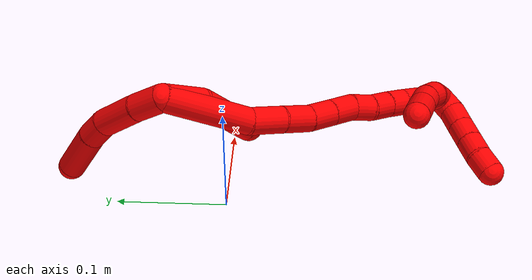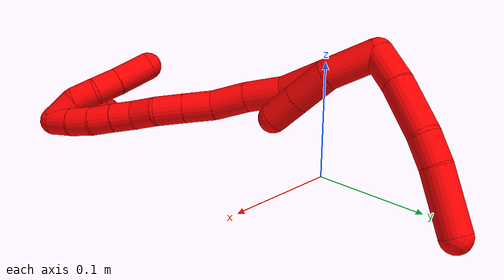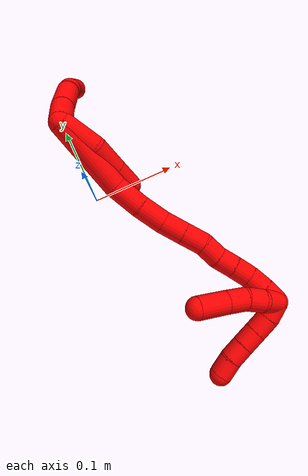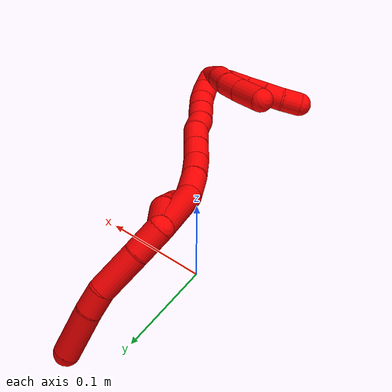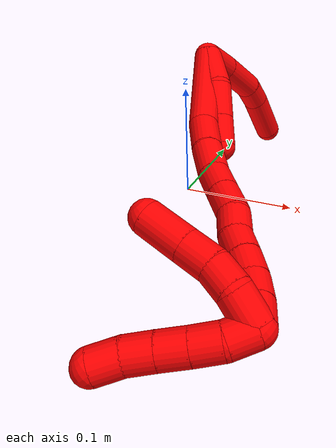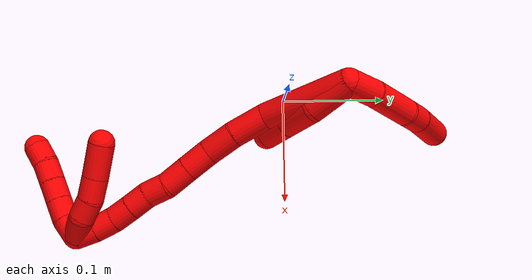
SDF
<sdf version="1.7">
 <world name="default">
  <model name="photoneo_s_sensor">
   <static>1</static>
   <pose>0 0 2 1.57079 1.57079 3.14159</pose>
   <link name="link">
    <inertial><mass>0.1</mass></inertial>
    <sensor name="sensor" type="depth">
     <update_rate>30</update_rate>
     <camera>
      <horizontal_fov>1.22</horizontal_fov>
      <image><width>1920</width><height>1200</height><format>B8G8R8</format></image>
      <clip><near>0.1</near><far>4</far></clip>
      <depth_camera><output>points</output></depth_camera>
     </camera>
     <plugin name="camera_plugin" filename="libgazebo_ros_depth_camera.so">
      <baseline>0.2</baseline>
      <alwaysOn>1</alwaysOn>
      <updateRate>0.0</updateRate>
      <cameraName>camera_ir</cameraName>
      <imageTopicName>/camera/color/image_raw</imageTopicName>
      <cameraInfoTopicName>/camera/color/camera_info</cameraInfoTopicName>
      <depthImageTopicName>/camera/depth/image_raw</depthImageTopicName>
      <depthImageCameraInfoTopicName>/camera/depth/camera_info</depthImageCameraInfoTopicName>
      <pointCloudTopicName>/camera/depth/points</pointCloudTopicName>
      <frameName>fr_optical</frameName>
      <pointCloudCutoff>0.1</pointCloudCutoff>
      <pointCloudCutoffMax>2.0</pointCloudCutoffMax>
      <distortionK1>0</distortionK1>
      <distortionK2>0</distortionK2>
      <distortionK3>0</distortionK3>
      <distortionT1>0</distortionT1>
      <distortionT2>0</distortionT2>
      <CxPrime>0</CxPrime>
      <Cx>0</Cx>
      <Cy>0</Cy>
      <focalLength>0</focalLength>
      <hackBaseline>0</hackBaseline>
     </plugin>
    </sensor>
   </link>
  </model>
  <model name="bin">
   <static>1</static>
   <link name="bottom">
    <collision name="collision-bottom">
     <pose>0 0 -0.01 0 -0 0</pose>
     <geometry><box><size>0.8 0.6 0.02</size></box></geometry>
     <surface>
      <friction><ode><mu>100</mu><mu2>100</mu2></ode></friction>
      <contact><collide_bitmask>65535</collide_bitmask></contact>
     </surface>
    </collision>
   </link>
   <link name="west_wall">
    <collision name="collision-west_wall">
     <pose>-0.41 0 0.1 0 -0 0</pose>
     <geometry><box><size>0.02 0.6 0.2</size></box></geometry>
     <surface>
      <friction><ode><mu>100</mu><mu2>100</mu2></ode></friction>
      <contact><collide_bitmask>65535</collide_bitmask></contact>
     </surface>
    </collision>
   </link>
   <link name="east_wall">
    <collision name="collision-east_wall">
     <pose>0.41 0 0.1 0 -0 0</pose>
     <geometry><box><size>0.02 0.6 0.2</size></box></geometry>
     <surface>
      <friction><ode><mu>100</mu><mu2>100</mu2></ode></friction>
      <contact><collide_bitmask>65535</collide_bitmask></contact>
     </surface>
    </collision>
   </link>
   <link name="south_wall">
    <collision name="collision-south_wall">
     <pose>0 -0.31 0.1 0 -0 0</pose>
     <geometry><box><size>0.8 0.02 0.2</size></box></geometry>
     <surface>
      <friction><ode><mu>100</mu><mu2>100</mu2></ode></friction>
      <contact><collide_bitmask>65535</collide_bitmask></contact>
     </surface>
    </collision>
   </link>
   <link name="north_wall">
    <collision name="collision-north_wall">
     <pose>0 0.31 0.1 0 -0 0</pose>
     <geometry><box><size>0.8 0.02 0.2</size></box></geometry>
     <surface>
      <friction><ode><mu>100</mu><mu2>100</mu2></ode></friction>
      <contact><collide_bitmask>65535</collide_bitmask></contact>
     </surface>
    </collision>
   </link>
  </model>
  <model name="2">
   <static>0</static>
   <link name="2">
    <collision name="collision-cylinder-e_1_2_8">
     <pose>-0.003257 0.01201 -0.00924 -2.22653 -0.211712 0.425075</pose>
     <geometry><cylinder><radius>0.0125</radius><length>0.030999</length></cylinder></geometry>
     <surface>
      <friction><ode><mu>1.16</mu><mu2>1.16</mu2><slip1>0</slip1><slip2>0</slip2></ode></friction>
      <contact><ode><kp>1e+06</kp><kd>1</kd><max_vel>0</max_vel><min_depth>0.001</min_depth></ode></contact>
     </surface>
    </collision>
    <visual name="visual-cylinder-e_1_2_8">
     <pose>-0.003257 0.01201 -0.00924 -2.22653 -0.211712 0.425075</pose>
     <geometry><cylinder><radius>0.0125</radius><length>0.030999</length></cylinder></geometry>
     <material><ambient>1 0 0 1</ambient></material>
    </visual>
    <collision name="collision-cylinder-e_2_8_9">
     <pose>-0.011445 0.039826 -0.033561 -2.33278 -0.222016 0.509552</pose>
     <geometry><cylinder><radius>0.0125</radius><length>0.044791</length></cylinder></geometry>
     <surface>
      <friction><ode><mu>1.16</mu><mu2>1.16</mu2><slip1>0</slip1><slip2>0</slip2></ode></friction>
      <contact><ode><kp>1e+06</kp><kd>1</kd><max_vel>0</max_vel><min_depth>0.001</min_depth></ode></contact>
     </surface>
    </collision>
    <visual name="visual-cylinder-e_2_8_9">
     <pose>-0.011445 0.039826 -0.033561 -2.33278 -0.222016 0.509552</pose>
     <geometry><cylinder><radius>0.0125</radius><length>0.044791</length></cylinder></geometry>
     <material><ambient>1 0 0 1</ambient></material>
    </visual>
    <collision name="collision-cylinder-e_3_9_10">
     <pose>-0.021325 0.062358 -0.057095 -2.4694 -0.429495 1.11624</pose>
     <geometry><cylinder><radius>0.0125</radius><length>0.023765</length></cylinder></geometry>
     <surface>
      <friction><ode><mu>1.16</mu><mu2>1.16</mu2><slip1>0</slip1><slip2>0</slip2></ode></friction>
      <contact><ode><kp>1e+06</kp><kd>1</kd><max_vel>0</max_vel><min_depth>0.001</min_depth></ode></contact>
     </surface>
    </collision>
    <visual name="visual-cylinder-e_3_9_10">
     <pose>-0.021325 0.062358 -0.057095 -2.4694 -0.429495 1.11624</pose>
     <geometry><cylinder><radius>0.0125</radius><length>0.023765</length></cylinder></geometry>
     <material><ambient>1 0 0 1</ambient></material>
    </visual>
    <collision name="collision-cylinder-e_4_10_6">
     <pose>-0.038096 0.08059 -0.084628 -2.59898 -0.487877 1.45985</pose>
     <geometry><cylinder><radius>0.0125</radius><length>0.050445</length></cylinder></geometry>
     <surface>
      <friction><ode><mu>1.16</mu><mu2>1.16</mu2><slip1>0</slip1><slip2>0</slip2></ode></friction>
      <contact><ode><kp>1e+06</kp><kd>1</kd><max_vel>0</max_vel><min_depth>0.001</min_depth></ode></contact>
     </surface>
    </collision>
    <visual name="visual-cylinder-e_4_10_6">
     <pose>-0.038096 0.08059 -0.084628 -2.59898 -0.487877 1.45985</pose>
     <geometry><cylinder><radius>0.0125</radius><length>0.050445</length></cylinder></geometry>
     <material><ambient>1 0 0 1</ambient></material>
    </visual>
    <collision name="collision-cylinder-e_1_2_11">
     <pose>0.002186 -0.015561 -0.013241 2.27579 0.106566 0.229797</pose>
     <geometry><cylinder><radius>0.0125</radius><length>0.041097</length></cylinder></geometry>
     <surface>
      <friction><ode><mu>1.16</mu><mu2>1.16</mu2><slip1>0</slip1><slip2>0</slip2></ode></friction>
      <contact><ode><kp>1e+06</kp><kd>1</kd><max_vel>0</max_vel><min_depth>0.001</min_depth></ode></contact>
     </surface>
    </collision>
    <visual name="visual-cylinder-e_1_2_11">
     <pose>0.002186 -0.015561 -0.013241 2.27579 0.106566 0.229797</pose>
     <geometry><cylinder><radius>0.0125</radius><length>0.041097</length></cylinder></geometry>
     <material><ambient>1 0 0 1</ambient></material>
    </visual>
    <collision name="collision-cylinder-e_2_11_12">
     <pose>0.000967 -0.042369 -0.037771 2.35815 -0.210481 -0.50071</pose>
     <geometry><cylinder><radius>0.0125</radius><length>0.032591</length></cylinder></geometry>
     <surface>
      <friction><ode><mu>1.16</mu><mu2>1.16</mu2><slip1>0</slip1><slip2>0</slip2></ode></friction>
      <contact><ode><kp>1e+06</kp><kd>1</kd><max_vel>0</max_vel><min_depth>0.001</min_depth></ode></contact>
     </surface>
    </collision>
    <visual name="visual-cylinder-e_2_11_12">
     <pose>0.000967 -0.042369 -0.037771 2.35815 -0.210481 -0.50071</pose>
     <geometry><cylinder><radius>0.0125</radius><length>0.032591</length></cylinder></geometry>
     <material><ambient>1 0 0 1</ambient></material>
    </visual>
    <collision name="collision-cylinder-e_3_12_5">
     <pose>-0.005131 -0.06266 -0.058227 2.36281 -0.206151 -0.493886</pose>
     <geometry><cylinder><radius>0.0125</radius><length>0.026312</length></cylinder></geometry>
     <surface>
      <friction><ode><mu>1.16</mu><mu2>1.16</mu2><slip1>0</slip1><slip2>0</slip2></ode></friction>
      <contact><ode><kp>1e+06</kp><kd>1</kd><max_vel>0</max_vel><min_depth>0.001</min_depth></ode></contact>
     </surface>
    </collision>
    <visual name="visual-cylinder-e_3_12_5">
     <pose>-0.005131 -0.06266 -0.058227 2.36281 -0.206151 -0.493886</pose>
     <geometry><cylinder><radius>0.0125</radius><length>0.026312</length></cylinder></geometry>
     <material><ambient>1 0 0 1</ambient></material>
    </visual>
    <collision name="collision-cylinder-e_1_2_13">
     <pose>-0.0033 -0.036306 -0.021647 2.10845 -0.077916 -0.137027</pose>
     <geometry><cylinder><radius>0.0125</radius><length>0.084797</length></cylinder></geometry>
     <surface>
      <friction><ode><mu>1.16</mu><mu2>1.16</mu2><slip1>0</slip1><slip2>0</slip2></ode></friction>
      <contact><ode><kp>1e+06</kp><kd>1</kd><max_vel>0</max_vel><min_depth>0.001</min_depth></ode></contact>
     </surface>
    </collision>
    <visual name="visual-cylinder-e_1_2_13">
     <pose>-0.0033 -0.036306 -0.021647 2.10845 -0.077916 -0.137027</pose>
     <geometry><cylinder><radius>0.0125</radius><length>0.084797</length></cylinder></geometry>
     <material><ambient>1 0 0 1</ambient></material>
    </visual>
    <collision name="collision-cylinder-e_2_13_14">
     <pose>-0.003336 -0.087084 -0.050824 2.05054 0.197484 0.32357</pose>
     <geometry><cylinder><radius>0.0125</radius><length>0.033272</length></cylinder></geometry>
     <surface>
      <friction><ode><mu>1.16</mu><mu2>1.16</mu2><slip1>0</slip1><slip2>0</slip2></ode></friction>
      <contact><ode><kp>1e+06</kp><kd>1</kd><max_vel>0</max_vel><min_depth>0.001</min_depth></ode></contact>
     </surface>
    </collision>
    <visual name="visual-cylinder-e_2_13_14">
     <pose>-0.003336 -0.087084 -0.050824 2.05054 0.197484 0.32357</pose>
     <geometry><cylinder><radius>0.0125</radius><length>0.033272</length></cylinder></geometry>
     <material><ambient>1 0 0 1</ambient></material>
    </visual>
    <collision name="collision-cylinder-e_3_14_15">
     <pose>0.002928 -0.113505 -0.066519 2.17025 0.204382 0.383778</pose>
     <geometry><cylinder><radius>0.0125</radius><length>0.029562</length></cylinder></geometry>
     <surface>
      <friction><ode><mu>1.16</mu><mu2>1.16</mu2><slip1>0</slip1><slip2>0</slip2></ode></friction>
      <contact><ode><kp>1e+06</kp><kd>1</kd><max_vel>0</max_vel><min_depth>0.001</min_depth></ode></contact>
     </surface>
    </collision>
    <visual name="visual-cylinder-e_3_14_15">
     <pose>0.002928 -0.113505 -0.066519 2.17025 0.204382 0.383778</pose>
     <geometry><cylinder><radius>0.0125</radius><length>0.029562</length></cylinder></geometry>
     <material><ambient>1 0 0 1</ambient></material>
    </visual>
    <collision name="collision-cylinder-e_4_15_16">
     <pose>0.010583 -0.135486 -0.08087 2.12328 0.376198 0.657224</pose>
     <geometry><cylinder><radius>0.0125</radius><length>0.025343</length></cylinder></geometry>
     <surface>
      <friction><ode><mu>1.16</mu><mu2>1.16</mu2><slip1>0</slip1><slip2>0</slip2></ode></friction>
      <contact><ode><kp>1e+06</kp><kd>1</kd><max_vel>0</max_vel><min_depth>0.001</min_depth></ode></contact>
     </surface>
    </collision>
    <visual name="visual-cylinder-e_4_15_16">
     <pose>0.010583 -0.135486 -0.08087 2.12328 0.376198 0.657224</pose>
     <geometry><cylinder><radius>0.0125</radius><length>0.025343</length></cylinder></geometry>
     <material><ambient>1 0 0 1</ambient></material>
    </visual>
    <collision name="collision-cylinder-e_5_16_17">
     <pose>0.019898 -0.155393 -0.0933 2.13476 0.379497 0.67108</pose>
     <geometry><cylinder><radius>0.0125</radius><length>0.025158</length></cylinder></geometry>
     <surface>
      <friction><ode><mu>1.16</mu><mu2>1.16</mu2><slip1>0</slip1><slip2>0</slip2></ode></friction>
      <contact><ode><kp>1e+06</kp><kd>1</kd><max_vel>0</max_vel><min_depth>0.001</min_depth></ode></contact>
     </surface>
    </collision>
    <visual name="visual-cylinder-e_5_16_17">
     <pose>0.019898 -0.155393 -0.0933 2.13476 0.379497 0.67108</pose>
     <geometry><cylinder><radius>0.0125</radius><length>0.025158</length></cylinder></geometry>
     <material><ambient>1 0 0 1</ambient></material>
    </visual>
    <collision name="collision-cylinder-e_6_17_18">
     <pose>0.025875 -0.174659 -0.104078 2.02039 0.125609 0.19968</pose>
     <geometry><cylinder><radius>0.0125</radius><length>0.02102</length></cylinder></geometry>
     <surface>
      <friction><ode><mu>1.16</mu><mu2>1.16</mu2><slip1>0</slip1><slip2>0</slip2></ode></friction>
      <contact><ode><kp>1e+06</kp><kd>1</kd><max_vel>0</max_vel><min_depth>0.001</min_depth></ode></contact>
     </surface>
    </collision>
    <visual name="visual-cylinder-e_6_17_18">
     <pose>0.025875 -0.174659 -0.104078 2.02039 0.125609 0.19968</pose>
     <geometry><cylinder><radius>0.0125</radius><length>0.02102</length></cylinder></geometry>
     <material><ambient>1 0 0 1</ambient></material>
    </visual>
    <collision name="collision-cylinder-e_7_18_19">
     <pose>0.030467 -0.192096 -0.113633 2.12889 0.332482 0.587597</pose>
     <geometry><cylinder><radius>0.0125</radius><length>0.02007</length></cylinder></geometry>
     <surface>
      <friction><ode><mu>1.16</mu><mu2>1.16</mu2><slip1>0</slip1><slip2>0</slip2></ode></friction>
      <contact><ode><kp>1e+06</kp><kd>1</kd><max_vel>0</max_vel><min_depth>0.001</min_depth></ode></contact>
     </surface>
    </collision>
    <visual name="visual-cylinder-e_7_18_19">
     <pose>0.030467 -0.192096 -0.113633 2.12889 0.332482 0.587597</pose>
     <geometry><cylinder><radius>0.0125</radius><length>0.02007</length></cylinder></geometry>
     <material><ambient>1 0 0 1</ambient></material>
    </visual>
    <collision name="collision-cylinder-e_8_19_20">
     <pose>0.036647 -0.208353 -0.123737 2.12493 0.292153 0.516328</pose>
     <geometry><cylinder><radius>0.0125</radius><length>0.020167</length></cylinder></geometry>
     <surface>
      <friction><ode><mu>1.16</mu><mu2>1.16</mu2><slip1>0</slip1><slip2>0</slip2></ode></friction>
      <contact><ode><kp>1e+06</kp><kd>1</kd><max_vel>0</max_vel><min_depth>0.001</min_depth></ode></contact>
     </surface>
    </collision>
    <visual name="visual-cylinder-e_8_19_20">
     <pose>0.036647 -0.208353 -0.123737 2.12493 0.292153 0.516328</pose>
     <geometry><cylinder><radius>0.0125</radius><length>0.020167</length></cylinder></geometry>
     <material><ambient>1 0 0 1</ambient></material>
    </visual>
    <collision name="collision-cylinder-e_9_20_21">
     <pose>0.042143 -0.225744 -0.132681 1.96909 0.254648 0.380841</pose>
     <geometry><cylinder><radius>0.0125</radius><length>0.020581</length></cylinder></geometry>
     <surface>
      <friction><ode><mu>1.16</mu><mu2>1.16</mu2><slip1>0</slip1><slip2>0</slip2></ode></friction>
      <contact><ode><kp>1e+06</kp><kd>1</kd><max_vel>0</max_vel><min_depth>0.001</min_depth></ode></contact>
     </surface>
    </collision>
    <visual name="visual-cylinder-e_9_20_21">
     <pose>0.042143 -0.225744 -0.132681 1.96909 0.254648 0.380841</pose>
     <geometry><cylinder><radius>0.0125</radius><length>0.020581</length></cylinder></geometry>
     <material><ambient>1 0 0 1</ambient></material>
    </visual>
    <collision name="collision-cylinder-e_10_21_1">
     <pose>0.046886 -0.244364 -0.139099 1.83514 0.216443 0.282041</pose>
     <geometry><cylinder><radius>0.0125</radius><length>0.020029</length></cylinder></geometry>
     <surface>
      <friction><ode><mu>1.16</mu><mu2>1.16</mu2><slip1>0</slip1><slip2>0</slip2></ode></friction>
      <contact><ode><kp>1e+06</kp><kd>1</kd><max_vel>0</max_vel><min_depth>0.001</min_depth></ode></contact>
     </surface>
    </collision>
    <visual name="visual-cylinder-e_10_21_1">
     <pose>0.046886 -0.244364 -0.139099 1.83514 0.216443 0.282041</pose>
     <geometry><cylinder><radius>0.0125</radius><length>0.020029</length></cylinder></geometry>
     <material><ambient>1 0 0 1</ambient></material>
    </visual>
    <collision name="collision-cylinder-e_1_1_22">
     <pose>0.047991 -0.249418 -0.129958 -0.358835 -0.083547 0.015161</pose>
     <geometry><cylinder><radius>0.0125</radius><length>0.025071</length></cylinder></geometry>
     <surface>
      <friction><ode><mu>1.16</mu><mu2>1.16</mu2><slip1>0</slip1><slip2>0</slip2></ode></friction>
      <contact><ode><kp>1e+06</kp><kd>1</kd><max_vel>0</max_vel><min_depth>0.001</min_depth></ode></contact>
     </surface>
    </collision>
    <visual name="visual-cylinder-e_1_1_22">
     <pose>0.047991 -0.249418 -0.129958 -0.358835 -0.083547 0.015161</pose>
     <geometry><cylinder><radius>0.0125</radius><length>0.025071</length></cylinder></geometry>
     <material><ambient>1 0 0 1</ambient></material>
    </visual>
    <collision name="collision-cylinder-e_2_22_23">
     <pose>0.043193 -0.240277 -0.110196 -0.53267 -0.381092 0.105148</pose>
     <geometry><cylinder><radius>0.0125</radius><length>0.020173</length></cylinder></geometry>
     <surface>
      <friction><ode><mu>1.16</mu><mu2>1.16</mu2><slip1>0</slip1><slip2>0</slip2></ode></friction>
      <contact><ode><kp>1e+06</kp><kd>1</kd><max_vel>0</max_vel><min_depth>0.001</min_depth></ode></contact>
     </surface>
    </collision>
    <visual name="visual-cylinder-e_2_22_23">
     <pose>0.043193 -0.240277 -0.110196 -0.53267 -0.381092 0.105148</pose>
     <geometry><cylinder><radius>0.0125</radius><length>0.020173</length></cylinder></geometry>
     <material><ambient>1 0 0 1</ambient></material>
    </visual>
    <collision name="collision-cylinder-e_3_23_24">
     <pose>0.03376 -0.232633 -0.093025 -0.307204 -0.53651 0.085064</pose>
     <geometry><cylinder><radius>0.0125</radius><length>0.022229</length></cylinder></geometry>
     <surface>
      <friction><ode><mu>1.16</mu><mu2>1.16</mu2><slip1>0</slip1><slip2>0</slip2></ode></friction>
      <contact><ode><kp>1e+06</kp><kd>1</kd><max_vel>0</max_vel><min_depth>0.001</min_depth></ode></contact>
     </surface>
    </collision>
    <visual name="visual-cylinder-e_3_23_24">
     <pose>0.03376 -0.232633 -0.093025 -0.307204 -0.53651 0.085064</pose>
     <geometry><cylinder><radius>0.0125</radius><length>0.022229</length></cylinder></geometry>
     <material><ambient>1 0 0 1</ambient></material>
    </visual>
    <collision name="collision-cylinder-e_4_24_4">
     <pose>0.02024 -0.225969 -0.070179 -0.268142 -0.502949 0.069277</pose>
     <geometry><cylinder><radius>0.0125</radius><length>0.032527</length></cylinder></geometry>
     <surface>
      <friction><ode><mu>1.16</mu><mu2>1.16</mu2><slip1>0</slip1><slip2>0</slip2></ode></friction>
      <contact><ode><kp>1e+06</kp><kd>1</kd><max_vel>0</max_vel><min_depth>0.001</min_depth></ode></contact>
     </surface>
    </collision>
    <visual name="visual-cylinder-e_4_24_4">
     <pose>0.02024 -0.225969 -0.070179 -0.268142 -0.502949 0.069277</pose>
     <geometry><cylinder><radius>0.0125</radius><length>0.032527</length></cylinder></geometry>
     <material><ambient>1 0 0 1</ambient></material>
    </visual>
    <collision name="collision-cylinder-e_1_1_25">
     <pose>0.041807 -0.259654 -0.137977 1.00957 -0.808149 -0.464023</pose>
     <geometry><cylinder><radius>0.0125</radius><length>0.02</length></cylinder></geometry>
     <surface>
      <friction><ode><mu>1.16</mu><mu2>1.16</mu2><slip1>0</slip1><slip2>0</slip2></ode></friction>
      <contact><ode><kp>1e+06</kp><kd>1</kd><max_vel>0</max_vel><min_depth>0.001</min_depth></ode></contact>
     </surface>
    </collision>
    <visual name="visual-cylinder-e_1_1_25">
     <pose>0.041807 -0.259654 -0.137977 1.00957 -0.808149 -0.464023</pose>
     <geometry><cylinder><radius>0.0125</radius><length>0.02</length></cylinder></geometry>
     <material><ambient>1 0 0 1</ambient></material>
    </visual>
    <collision name="collision-cylinder-e_2_25_26">
     <pose>0.026607 -0.26925 -0.129563 0.669219 -0.922288 -0.342133</pose>
     <geometry><cylinder><radius>0.0125</radius><length>0.02</length></cylinder></geometry>
     <surface>
      <friction><ode><mu>1.16</mu><mu2>1.16</mu2><slip1>0</slip1><slip2>0</slip2></ode></friction>
      <contact><ode><kp>1e+06</kp><kd>1</kd><max_vel>0</max_vel><min_depth>0.001</min_depth></ode></contact>
     </surface>
    </collision>
    <visual name="visual-cylinder-e_2_25_26">
     <pose>0.026607 -0.26925 -0.129563 0.669219 -0.922288 -0.342133</pose>
     <geometry><cylinder><radius>0.0125</radius><length>0.02</length></cylinder></geometry>
     <material><ambient>1 0 0 1</ambient></material>
    </visual>
    <collision name="collision-cylinder-e_3_26_27">
     <pose>0.010821 -0.276662 -0.119778 0.62796 -0.89713 -0.31006</pose>
     <geometry><cylinder><radius>0.0125</radius><length>0.02</length></cylinder></geometry>
     <surface>
      <friction><ode><mu>1.16</mu><mu2>1.16</mu2><slip1>0</slip1><slip2>0</slip2></ode></friction>
      <contact><ode><kp>1e+06</kp><kd>1</kd><max_vel>0</max_vel><min_depth>0.001</min_depth></ode></contact>
     </surface>
    </collision>
    <visual name="visual-cylinder-e_3_26_27">
     <pose>0.010821 -0.276662 -0.119778 0.62796 -0.89713 -0.31006</pose>
     <geometry><cylinder><radius>0.0125</radius><length>0.02</length></cylinder></geometry>
     <material><ambient>1 0 0 1</ambient></material>
    </visual>
    <collision name="collision-cylinder-e_4_27_28">
     <pose>-0.004837 -0.284111 -0.109813 0.655916 -0.901534 -0.326428</pose>
     <geometry><cylinder><radius>0.0125</radius><length>0.02</length></cylinder></geometry>
     <surface>
      <friction><ode><mu>1.16</mu><mu2>1.16</mu2><slip1>0</slip1><slip2>0</slip2></ode></friction>
      <contact><ode><kp>1e+06</kp><kd>1</kd><max_vel>0</max_vel><min_depth>0.001</min_depth></ode></contact>
     </surface>
    </collision>
    <visual name="visual-cylinder-e_4_27_28">
     <pose>-0.004837 -0.284111 -0.109813 0.655916 -0.901534 -0.326428</pose>
     <geometry><cylinder><radius>0.0125</radius><length>0.02</length></cylinder></geometry>
     <material><ambient>1 0 0 1</ambient></material>
    </visual>
    <collision name="collision-cylinder-e_5_28_3">
     <pose>-0.020371 -0.293003 -0.101055 0.925975 -0.877417 -0.460136</pose>
     <geometry><cylinder><radius>0.0125</radius><length>0.02</length></cylinder></geometry>
     <surface>
      <friction><ode><mu>1.16</mu><mu2>1.16</mu2><slip1>0</slip1><slip2>0</slip2></ode></friction>
      <contact><ode><kp>1e+06</kp><kd>1</kd><max_vel>0</max_vel><min_depth>0.001</min_depth></ode></contact>
     </surface>
    </collision>
    <visual name="visual-cylinder-e_5_28_3">
     <pose>-0.020371 -0.293003 -0.101055 0.925975 -0.877417 -0.460136</pose>
     <geometry><cylinder><radius>0.0125</radius><length>0.02</length></cylinder></geometry>
     <material><ambient>1 0 0 1</ambient></material>
    </visual>
    <collision name="collision-sphere-3">
     <pose>-0.028062 -0.298111 -0.097213 0 -0 0</pose>
     <geometry><sphere><radius>0.0125</radius></sphere></geometry>
     <surface>
      <friction><ode><mu>1.16</mu><mu2>1.16</mu2><slip1>0</slip1><slip2>0</slip2></ode></friction>
      <contact><ode><kp>1e+06</kp><kd>1</kd><max_vel>0</max_vel><min_depth>0.001</min_depth></ode></contact>
     </surface>
    </collision>
    <visual name="visual-sphere-3">
     <pose>-0.028062 -0.298111 -0.097213 0 -0 0</pose>
     <geometry><sphere><radius>0.0125</radius></sphere></geometry>
     <material><ambient>1 0 0 1</ambient></material>
    </visual>
    <collision name="collision-sphere-28">
     <pose>-0.01268 -0.287895 -0.104896 0 -0 0</pose>
     <geometry><sphere><radius>0.0125</radius></sphere></geometry>
     <surface>
      <friction><ode><mu>1.16</mu><mu2>1.16</mu2><slip1>0</slip1><slip2>0</slip2></ode></friction>
      <contact><ode><kp>1e+06</kp><kd>1</kd><max_vel>0</max_vel><min_depth>0.001</min_depth></ode></contact>
     </surface>
    </collision>
    <visual name="visual-sphere-28">
     <pose>-0.01268 -0.287895 -0.104896 0 -0 0</pose>
     <geometry><sphere><radius>0.0125</radius></sphere></geometry>
     <material><ambient>1 0 0 1</ambient></material>
    </visual>
    <collision name="collision-sphere-27">
     <pose>0.003006 -0.280327 -0.114729 0 -0 0</pose>
     <geometry><sphere><radius>0.0125</radius></sphere></geometry>
     <surface>
      <friction><ode><mu>1.16</mu><mu2>1.16</mu2><slip1>0</slip1><slip2>0</slip2></ode></friction>
      <contact><ode><kp>1e+06</kp><kd>1</kd><max_vel>0</max_vel><min_depth>0.001</min_depth></ode></contact>
     </surface>
    </collision>
    <visual name="visual-sphere-27">
     <pose>0.003006 -0.280327 -0.114729 0 -0 0</pose>
     <geometry><sphere><radius>0.0125</radius></sphere></geometry>
     <material><ambient>1 0 0 1</ambient></material>
    </visual>
    <collision name="collision-sphere-26">
     <pose>0.018637 -0.272997 -0.124826 0 -0 0</pose>
     <geometry><sphere><radius>0.0125</radius></sphere></geometry>
     <surface>
      <friction><ode><mu>1.16</mu><mu2>1.16</mu2><slip1>0</slip1><slip2>0</slip2></ode></friction>
      <contact><ode><kp>1e+06</kp><kd>1</kd><max_vel>0</max_vel><min_depth>0.001</min_depth></ode></contact>
     </surface>
    </collision>
    <visual name="visual-sphere-26">
     <pose>0.018637 -0.272997 -0.124826 0 -0 0</pose>
     <geometry><sphere><radius>0.0125</radius></sphere></geometry>
     <material><ambient>1 0 0 1</ambient></material>
    </visual>
    <collision name="collision-sphere-25">
     <pose>0.034576 -0.265503 -0.134301 0 -0 0</pose>
     <geometry><sphere><radius>0.0125</radius></sphere></geometry>
     <surface>
      <friction><ode><mu>1.16</mu><mu2>1.16</mu2><slip1>0</slip1><slip2>0</slip2></ode></friction>
      <contact><ode><kp>1e+06</kp><kd>1</kd><max_vel>0</max_vel><min_depth>0.001</min_depth></ode></contact>
     </surface>
    </collision>
    <visual name="visual-sphere-25">
     <pose>0.034576 -0.265503 -0.134301 0 -0 0</pose>
     <geometry><sphere><radius>0.0125</radius></sphere></geometry>
     <material><ambient>1 0 0 1</ambient></material>
    </visual>
    <collision name="collision-sphere-4">
     <pose>0.012401 -0.222194 -0.056439 0 -0 0</pose>
     <geometry><sphere><radius>0.0125</radius></sphere></geometry>
     <surface>
      <friction><ode><mu>1.16</mu><mu2>1.16</mu2><slip1>0</slip1><slip2>0</slip2></ode></friction>
      <contact><ode><kp>1e+06</kp><kd>1</kd><max_vel>0</max_vel><min_depth>0.001</min_depth></ode></contact>
     </surface>
    </collision>
    <visual name="visual-sphere-4">
     <pose>0.012401 -0.222194 -0.056439 0 -0 0</pose>
     <geometry><sphere><radius>0.0125</radius></sphere></geometry>
     <material><ambient>1 0 0 1</ambient></material>
    </visual>
    <collision name="collision-sphere-24">
     <pose>0.028079 -0.229745 -0.08392 0 -0 0</pose>
     <geometry><sphere><radius>0.0125</radius></sphere></geometry>
     <surface>
      <friction><ode><mu>1.16</mu><mu2>1.16</mu2><slip1>0</slip1><slip2>0</slip2></ode></friction>
      <contact><ode><kp>1e+06</kp><kd>1</kd><max_vel>0</max_vel><min_depth>0.001</min_depth></ode></contact>
     </surface>
    </collision>
    <visual name="visual-sphere-24">
     <pose>0.028079 -0.229745 -0.08392 0 -0 0</pose>
     <geometry><sphere><radius>0.0125</radius></sphere></geometry>
     <material><ambient>1 0 0 1</ambient></material>
    </visual>
    <collision name="collision-sphere-23">
     <pose>0.039441 -0.235522 -0.102131 0 -0 0</pose>
     <geometry><sphere><radius>0.0125</radius></sphere></geometry>
     <surface>
      <friction><ode><mu>1.16</mu><mu2>1.16</mu2><slip1>0</slip1><slip2>0</slip2></ode></friction>
      <contact><ode><kp>1e+06</kp><kd>1</kd><max_vel>0</max_vel><min_depth>0.001</min_depth></ode></contact>
     </surface>
    </collision>
    <visual name="visual-sphere-23">
     <pose>0.039441 -0.235522 -0.102131 0 -0 0</pose>
     <geometry><sphere><radius>0.0125</radius></sphere></geometry>
     <material><ambient>1 0 0 1</ambient></material>
    </visual>
    <collision name="collision-sphere-22">
     <pose>0.046944 -0.245032 -0.118262 0 -0 0</pose>
     <geometry><sphere><radius>0.0125</radius></sphere></geometry>
     <surface>
      <friction><ode><mu>1.16</mu><mu2>1.16</mu2><slip1>0</slip1><slip2>0</slip2></ode></friction>
      <contact><ode><kp>1e+06</kp><kd>1</kd><max_vel>0</max_vel><min_depth>0.001</min_depth></ode></contact>
     </surface>
    </collision>
    <visual name="visual-sphere-22">
     <pose>0.046944 -0.245032 -0.118262 0 -0 0</pose>
     <geometry><sphere><radius>0.0125</radius></sphere></geometry>
     <material><ambient>1 0 0 1</ambient></material>
    </visual>
    <collision name="collision-sphere-1">
     <pose>0.049037 -0.253805 -0.141654 0 -0 0</pose>
     <geometry><sphere><radius>0.0125</radius></sphere></geometry>
     <surface>
      <friction><ode><mu>1.16</mu><mu2>1.16</mu2><slip1>0</slip1><slip2>0</slip2></ode></friction>
      <contact><ode><kp>1e+06</kp><kd>1</kd><max_vel>0</max_vel><min_depth>0.001</min_depth></ode></contact>
     </surface>
    </collision>
    <visual name="visual-sphere-1">
     <pose>0.049037 -0.253805 -0.141654 0 -0 0</pose>
     <geometry><sphere><radius>0.0125</radius></sphere></geometry>
     <material><ambient>1 0 0 1</ambient></material>
    </visual>
    <collision name="collision-sphere-21">
     <pose>0.044735 -0.234923 -0.136543 0 -0 0</pose>
     <geometry><sphere><radius>0.0125</radius></sphere></geometry>
     <surface>
      <friction><ode><mu>1.16</mu><mu2>1.16</mu2><slip1>0</slip1><slip2>0</slip2></ode></friction>
      <contact><ode><kp>1e+06</kp><kd>1</kd><max_vel>0</max_vel><min_depth>0.001</min_depth></ode></contact>
     </surface>
    </collision>
    <visual name="visual-sphere-21">
     <pose>0.044735 -0.234923 -0.136543 0 -0 0</pose>
     <geometry><sphere><radius>0.0125</radius></sphere></geometry>
     <material><ambient>1 0 0 1</ambient></material>
    </visual>
    <collision name="collision-sphere-11">
     <pose>0.004371 -0.031122 -0.026481 0 -0 0</pose>
     <geometry><sphere><radius>0.0125</radius></sphere></geometry>
     <surface>
      <friction><ode><mu>1.16</mu><mu2>1.16</mu2><slip1>0</slip1><slip2>0</slip2></ode></friction>
      <contact><ode><kp>1e+06</kp><kd>1</kd><max_vel>0</max_vel><min_depth>0.001</min_depth></ode></contact>
     </surface>
    </collision>
    <visual name="visual-sphere-11">
     <pose>0.004371 -0.031122 -0.026481 0 -0 0</pose>
     <geometry><sphere><radius>0.0125</radius></sphere></geometry>
     <material><ambient>1 0 0 1</ambient></material>
    </visual>
    <collision name="collision-sphere-6">
     <pose>-0.049919 0.092094 -0.103708 0 -0 0</pose>
     <geometry><sphere><radius>0.0125</radius></sphere></geometry>
     <surface>
      <friction><ode><mu>1.16</mu><mu2>1.16</mu2><slip1>0</slip1><slip2>0</slip2></ode></friction>
      <contact><ode><kp>1e+06</kp><kd>1</kd><max_vel>0</max_vel><min_depth>0.001</min_depth></ode></contact>
     </surface>
    </collision>
    <visual name="visual-sphere-6">
     <pose>-0.049919 0.092094 -0.103708 0 -0 0</pose>
     <geometry><sphere><radius>0.0125</radius></sphere></geometry>
     <material><ambient>1 0 0 1</ambient></material>
    </visual>
    <collision name="collision-sphere-10">
     <pose>-0.026273 0.069085 -0.065548 0 -0 0</pose>
     <geometry><sphere><radius>0.0125</radius></sphere></geometry>
     <surface>
      <friction><ode><mu>1.16</mu><mu2>1.16</mu2><slip1>0</slip1><slip2>0</slip2></ode></friction>
      <contact><ode><kp>1e+06</kp><kd>1</kd><max_vel>0</max_vel><min_depth>0.001</min_depth></ode></contact>
     </surface>
    </collision>
    <visual name="visual-sphere-10">
     <pose>-0.026273 0.069085 -0.065548 0 -0 0</pose>
     <geometry><sphere><radius>0.0125</radius></sphere></geometry>
     <material><ambient>1 0 0 1</ambient></material>
    </visual>
    <collision name="collision-sphere-9">
     <pose>-0.016377 0.055631 -0.048642 0 -0 0</pose>
     <geometry><sphere><radius>0.0125</radius></sphere></geometry>
     <surface>
      <friction><ode><mu>1.16</mu><mu2>1.16</mu2><slip1>0</slip1><slip2>0</slip2></ode></friction>
      <contact><ode><kp>1e+06</kp><kd>1</kd><max_vel>0</max_vel><min_depth>0.001</min_depth></ode></contact>
     </surface>
    </collision>
    <visual name="visual-sphere-9">
     <pose>-0.016377 0.055631 -0.048642 0 -0 0</pose>
     <geometry><sphere><radius>0.0125</radius></sphere></geometry>
     <material><ambient>1 0 0 1</ambient></material>
    </visual>
    <collision name="collision-sphere-2">
     <geometry><sphere><radius>0.0125</radius></sphere></geometry>
     <surface>
      <friction><ode><mu>1.16</mu><mu2>1.16</mu2><slip1>0</slip1><slip2>0</slip2></ode></friction>
      <contact><ode><kp>1e+06</kp><kd>1</kd><max_vel>0</max_vel><min_depth>0.001</min_depth></ode></contact>
     </surface>
    </collision>
    <visual name="visual-sphere-2">
     <geometry><sphere><radius>0.0125</radius></sphere></geometry>
     <material><ambient>1 0 0 1</ambient></material>
    </visual>
    <collision name="collision-sphere-19">
     <pose>0.033742 -0.200142 -0.118656 0 -0 0</pose>
     <geometry><sphere><radius>0.0125</radius></sphere></geometry>
     <surface>
      <friction><ode><mu>1.16</mu><mu2>1.16</mu2><slip1>0</slip1><slip2>0</slip2></ode></friction>
      <contact><ode><kp>1e+06</kp><kd>1</kd><max_vel>0</max_vel><min_depth>0.001</min_depth></ode></contact>
     </surface>
    </collision>
    <visual name="visual-sphere-19">
     <pose>0.033742 -0.200142 -0.118656 0 -0 0</pose>
     <geometry><sphere><radius>0.0125</radius></sphere></geometry>
     <material><ambient>1 0 0 1</ambient></material>
    </visual>
    <collision name="collision-sphere-8">
     <pose>-0.006514 0.024021 -0.018479 0 -0 0</pose>
     <geometry><sphere><radius>0.0125</radius></sphere></geometry>
     <surface>
      <friction><ode><mu>1.16</mu><mu2>1.16</mu2><slip1>0</slip1><slip2>0</slip2></ode></friction>
      <contact><ode><kp>1e+06</kp><kd>1</kd><max_vel>0</max_vel><min_depth>0.001</min_depth></ode></contact>
     </surface>
    </collision>
    <visual name="visual-sphere-8">
     <pose>-0.006514 0.024021 -0.018479 0 -0 0</pose>
     <geometry><sphere><radius>0.0125</radius></sphere></geometry>
     <material><ambient>1 0 0 1</ambient></material>
    </visual>
    <collision name="collision-sphere-12">
     <pose>-0.002438 -0.053615 -0.049061 0 -0 0</pose>
     <geometry><sphere><radius>0.0125</radius></sphere></geometry>
     <surface>
      <friction><ode><mu>1.16</mu><mu2>1.16</mu2><slip1>0</slip1><slip2>0</slip2></ode></friction>
      <contact><ode><kp>1e+06</kp><kd>1</kd><max_vel>0</max_vel><min_depth>0.001</min_depth></ode></contact>
     </surface>
    </collision>
    <visual name="visual-sphere-12">
     <pose>-0.002438 -0.053615 -0.049061 0 -0 0</pose>
     <geometry><sphere><radius>0.0125</radius></sphere></geometry>
     <material><ambient>1 0 0 1</ambient></material>
    </visual>
    <collision name="collision-sphere-5">
     <pose>-0.007824 -0.071706 -0.067393 0 -0 0</pose>
     <geometry><sphere><radius>0.0125</radius></sphere></geometry>
     <surface>
      <friction><ode><mu>1.16</mu><mu2>1.16</mu2><slip1>0</slip1><slip2>0</slip2></ode></friction>
      <contact><ode><kp>1e+06</kp><kd>1</kd><max_vel>0</max_vel><min_depth>0.001</min_depth></ode></contact>
     </surface>
    </collision>
    <visual name="visual-sphere-5">
     <pose>-0.007824 -0.071706 -0.067393 0 -0 0</pose>
     <geometry><sphere><radius>0.0125</radius></sphere></geometry>
     <material><ambient>1 0 0 1</ambient></material>
    </visual>
    <collision name="collision-sphere-13">
     <pose>-0.0066 -0.072612 -0.043295 0 -0 0</pose>
     <geometry><sphere><radius>0.0125</radius></sphere></geometry>
     <surface>
      <friction><ode><mu>1.16</mu><mu2>1.16</mu2><slip1>0</slip1><slip2>0</slip2></ode></friction>
      <contact><ode><kp>1e+06</kp><kd>1</kd><max_vel>0</max_vel><min_depth>0.001</min_depth></ode></contact>
     </surface>
    </collision>
    <visual name="visual-sphere-13">
     <pose>-0.0066 -0.072612 -0.043295 0 -0 0</pose>
     <geometry><sphere><radius>0.0125</radius></sphere></geometry>
     <material><ambient>1 0 0 1</ambient></material>
    </visual>
    <collision name="collision-sphere-14">
     <pose>-7.2e-05 -0.101555 -0.058353 0 -0 0</pose>
     <geometry><sphere><radius>0.0125</radius></sphere></geometry>
     <surface>
      <friction><ode><mu>1.16</mu><mu2>1.16</mu2><slip1>0</slip1><slip2>0</slip2></ode></friction>
      <contact><ode><kp>1e+06</kp><kd>1</kd><max_vel>0</max_vel><min_depth>0.001</min_depth></ode></contact>
     </surface>
    </collision>
    <visual name="visual-sphere-14">
     <pose>-7.2e-05 -0.101555 -0.058353 0 -0 0</pose>
     <geometry><sphere><radius>0.0125</radius></sphere></geometry>
     <material><ambient>1 0 0 1</ambient></material>
    </visual>
    <collision name="collision-sphere-15">
     <pose>0.005928 -0.125454 -0.074685 0 -0 0</pose>
     <geometry><sphere><radius>0.0125</radius></sphere></geometry>
     <surface>
      <friction><ode><mu>1.16</mu><mu2>1.16</mu2><slip1>0</slip1><slip2>0</slip2></ode></friction>
      <contact><ode><kp>1e+06</kp><kd>1</kd><max_vel>0</max_vel><min_depth>0.001</min_depth></ode></contact>
     </surface>
    </collision>
    <visual name="visual-sphere-15">
     <pose>0.005928 -0.125454 -0.074685 0 -0 0</pose>
     <geometry><sphere><radius>0.0125</radius></sphere></geometry>
     <material><ambient>1 0 0 1</ambient></material>
    </visual>
    <collision name="collision-sphere-16">
     <pose>0.015238 -0.145518 -0.087055 0 -0 0</pose>
     <geometry><sphere><radius>0.0125</radius></sphere></geometry>
     <surface>
      <friction><ode><mu>1.16</mu><mu2>1.16</mu2><slip1>0</slip1><slip2>0</slip2></ode></friction>
      <contact><ode><kp>1e+06</kp><kd>1</kd><max_vel>0</max_vel><min_depth>0.001</min_depth></ode></contact>
     </surface>
    </collision>
    <visual name="visual-sphere-16">
     <pose>0.015238 -0.145518 -0.087055 0 -0 0</pose>
     <geometry><sphere><radius>0.0125</radius></sphere></geometry>
     <material><ambient>1 0 0 1</ambient></material>
    </visual>
    <collision name="collision-sphere-17">
     <pose>0.024558 -0.165268 -0.099546 0 -0 0</pose>
     <geometry><sphere><radius>0.0125</radius></sphere></geometry>
     <surface>
      <friction><ode><mu>1.16</mu><mu2>1.16</mu2><slip1>0</slip1><slip2>0</slip2></ode></friction>
      <contact><ode><kp>1e+06</kp><kd>1</kd><max_vel>0</max_vel><min_depth>0.001</min_depth></ode></contact>
     </surface>
    </collision>
    <visual name="visual-sphere-17">
     <pose>0.024558 -0.165268 -0.099546 0 -0 0</pose>
     <geometry><sphere><radius>0.0125</radius></sphere></geometry>
     <material><ambient>1 0 0 1</ambient></material>
    </visual>
    <collision name="collision-sphere-18">
     <pose>0.027192 -0.18405 -0.10861 0 -0 0</pose>
     <geometry><sphere><radius>0.0125</radius></sphere></geometry>
     <surface>
      <friction><ode><mu>1.16</mu><mu2>1.16</mu2><slip1>0</slip1><slip2>0</slip2></ode></friction>
      <contact><ode><kp>1e+06</kp><kd>1</kd><max_vel>0</max_vel><min_depth>0.001</min_depth></ode></contact>
     </surface>
    </collision>
    <visual name="visual-sphere-18">
     <pose>0.027192 -0.18405 -0.10861 0 -0 0</pose>
     <geometry><sphere><radius>0.0125</radius></sphere></geometry>
     <material><ambient>1 0 0 1</ambient></material>
    </visual>
    <collision name="collision-sphere-20">
     <pose>0.039551 -0.216565 -0.128818 0 -0 0</pose>
     <geometry><sphere><radius>0.0125</radius></sphere></geometry>
     <surface>
      <friction><ode><mu>1.16</mu><mu2>1.16</mu2><slip1>0</slip1><slip2>0</slip2></ode></friction>
      <contact><ode><kp>1e+06</kp><kd>1</kd><max_vel>0</max_vel><min_depth>0.001</min_depth></ode></contact>
     </surface>
    </collision>
    <visual name="visual-sphere-20">
     <pose>0.039551 -0.216565 -0.128818 0 -0 0</pose>
     <geometry><sphere><radius>0.0125</radius></sphere></geometry>
     <material><ambient>1 0 0 1</ambient></material>
    </visual>
    <inertial>
     <pose>0.007565 -0.113579 -0.073185 0 -0 0</pose>
     <mass>0.75</mass>
     <inertia>
      <ixx>0.000117</ixx>
      <ixy>0</ixy>
      <ixz>0</ixz>
      <iyy>-3.4e-05</iyy>
      <iyz>0</iyz>
      <izz>6.1e-05</izz>
     </inertia>
    </inertial>
   </link>
   <pose>0.001591 0.050305 0.117088 0.067372 -0.736146 -0.054087</pose>
  </model>
 </world>
</sdf>
